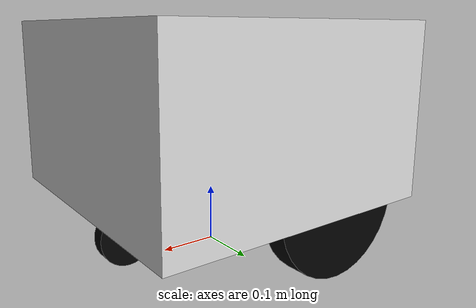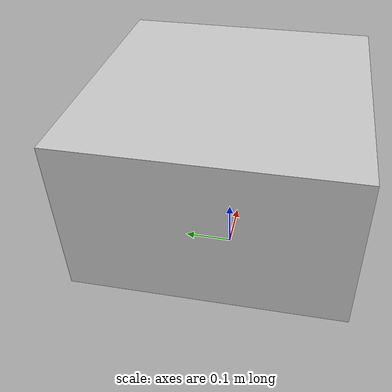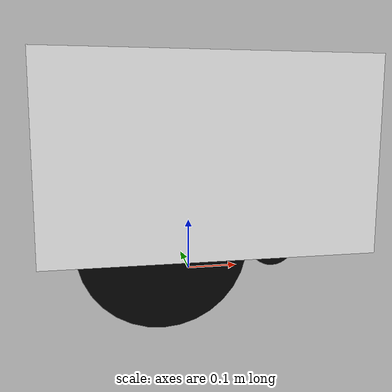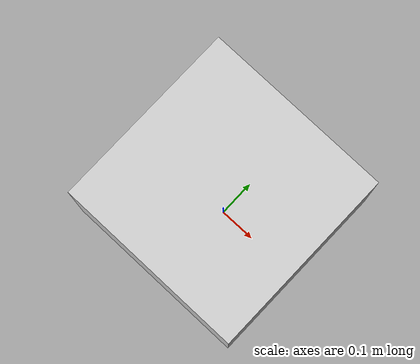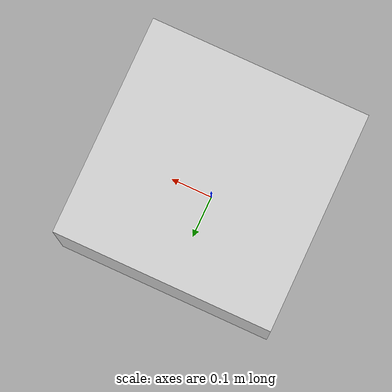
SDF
<?xml version="1.0"?>
<sdf version="1.6">
    <model name='GRobot'>
        <pose>0 0 0 0 0 0</pose>

        <link name='robot_base'>
            <inertial>
                <mass>10</mass>
                <pose>0 0 0.25</pose>
                <inertia>
                    <ixx>0.002125</ixx>
                    <ixy>0</ixy>
                    <ixz>0</ixz>
                    <iyy>0.002125</iyy>
                    <iyz>0</iyz>
                    <izz>0.003125</izz>
                </inertia>
            </inertial>
            <visual name='visual'>
                <geometry>
                    <mesh>
                        <uri>model://robot.model/meshes/robot_base.dae</uri>
                        <scale>1 1 1</scale>
                    </mesh>
                </geometry>
            </visual>
            <collision name='collision'>
                <geometry>
                    <mesh>
                        <uri>model://robot.model/meshes/robot_base.dae</uri>
                        <scale>1 1 1</scale>
                    </mesh>
                </geometry>
            </collision>
        </link>

        <link name='caster'>
            <inertial>
                <mass>0.5</mass>
                <pose>0.175 0 0.05</pose>
                <inertia>
                    <ixx>1.3131e-07</ixx>
                    <ixy>0</ixy>
                    <ixz>0</ixz>
                    <iyy>2.423e-07</iyy>
                    <iyz>0</iyz>
                    <izz>1.3131e-07</izz>
                </inertia>
            </inertial>
            <visual name='visual'>
                <geometry>
                    <mesh>
                        <uri>model://robot.model/meshes/caster.dae</uri>
                        <scale>1 1 1</scale>
                    </mesh>
                </geometry>
            </visual>
            <collision name='collision'>
                <geometry>
                    <mesh>
                        <uri>model://robot.model/meshes/caster.dae</uri>
                        <scale>1 1 1</scale>
                    </mesh>
                </geometry>
            </collision>
        </link>

        <link name='left_wheel'>
            <inertial>
                <mass>2</mass>
                <pose>-0.075 0.22 0.125</pose>
                <inertia>
                    <ixx>0.000008</ixx>
                    <ixy>0</ixy>
                    <ixz>0</ixz>
                    <iyy>0.000015</iyy>
                    <iyz>0</iyz>
                    <izz>0.000008</izz>
                </inertia>
            </inertial>
            <visual name='visual'>
                <geometry>
                    <mesh>
                        <uri>model://robot.model/meshes/left_wheel.dae</uri>
                        <scale>1 1 1</scale>
                    </mesh>
                </geometry>
            </visual>
            <collision name='collision'>
                <geometry>
                    <mesh>
                        <uri>model://robot.model/meshes/left_wheel.dae</uri>
                        <scale>1 1 1</scale>
                    </mesh>
                </geometry>
            </collision>
        </link>

        <link name='right_wheel'>
            <inertial>
                <mass>2</mass>
                <pose>-0.075 -0.22 0.125</pose>
                <inertia>
                    <ixx>0.000008</ixx>
                    <ixy>0</ixy>
                    <ixz>0</ixz>
                    <iyy>0.000015</iyy>
                    <iyz>0</iyz>
                    <izz>0.000008</izz>
                </inertia>
            </inertial>
            <visual name='visual'>
                <geometry>
                    <mesh>
                        <uri>model://robot.model/meshes/right_wheel.dae</uri>
                        <scale>1 1 1</scale>
                    </mesh>
                </geometry>
            </visual>
            <collision name='collision'>
                <geometry>
                    <mesh>
                        <uri>model://robot.model/meshes/right_wheel.dae</uri>
                        <scale>1 1 1</scale>
                    </mesh>
                </geometry>
            </collision>
        </link>

        <joint name='left_wheel_joint' type='revolute'>
            <parent>robot_base</parent>
            <child>left_wheel</child>
        </joint>

        <joint name='right_wheel_joint' type='revolute'>
            <parent>robot_base</parent>
            <child>right_wheel</child>
        </joint>

        <joint name='caster_wheel' type='ball'>
            <parent>robot_base</parent>
            <child>caster</child>
        </joint>

    </model>
</sdf>
